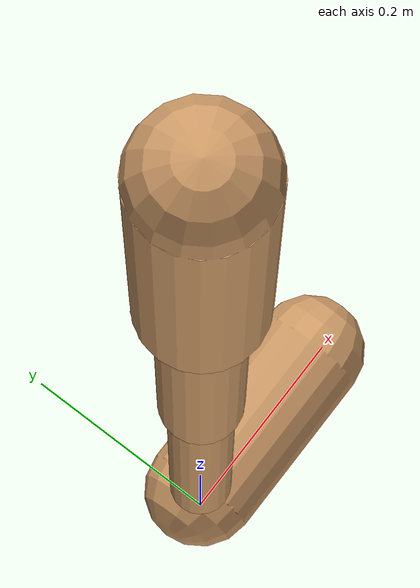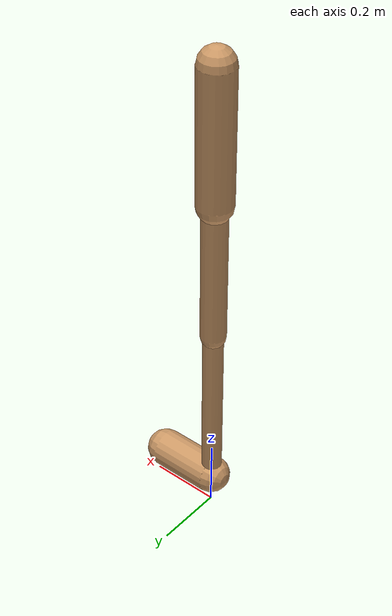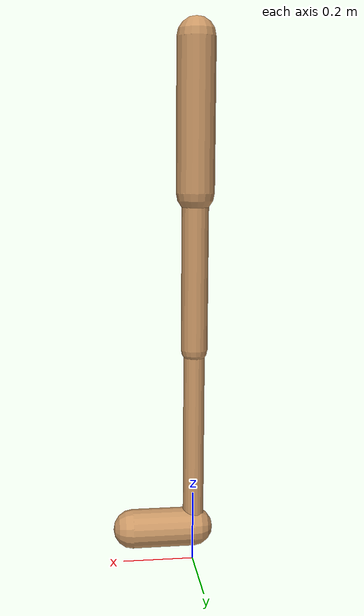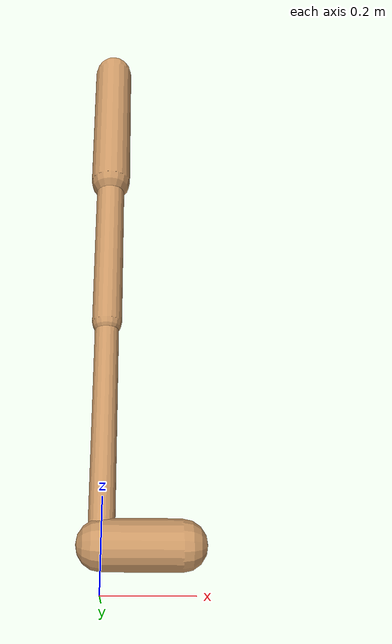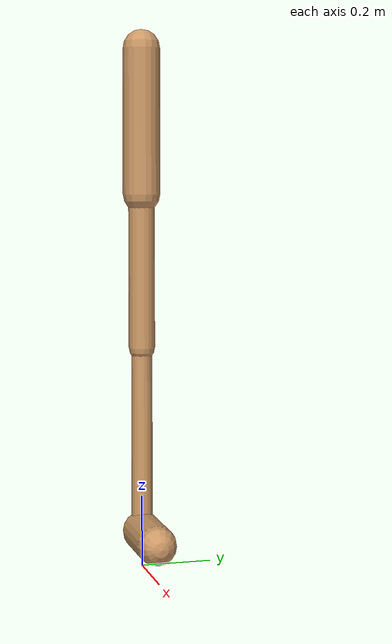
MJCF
<mujoco model="walker2d">
  <compiler angle="degree" coordinate="global" inertiafromgeom="true" />
  <default>
    <joint armature="0.01" damping=".1" limited="true" />
    <geom conaffinity="0" condim="3" contype="1" density="1000" friction="0.8 .1 .1" rgba="0.8 0.6 .4 1" />
  </default>
  <option integrator="RK4" timestep="0.002" />
  <worldbody>

    <body name="torso" pos="0 0 -0.046782286264057754">
      <joint armature="0" axis="1 0 0" damping="0" limited="false" name="ignorex" pos="0 0 0" stiffness="0" type="slide" />
      <joint armature="0" axis="0 0 1" damping="0" limited="false" name="ignorez" pos="0 0 0" ref="1.25" stiffness="0" type="slide" />
      <joint armature="0" axis="0 1 0" damping="0" limited="false" name="ignorey" pos="0 0 0" stiffness="0" type="hinge" />
      <geom fromto="0 0 1.45 0 0 1.05" name="torso_geom" size="0.05202447358836457" type="capsule" />
      <body name="thigh">
        <joint axis="0 -1 0" name="thigh_joint" pos="0 0 1.05" range="-150 0" type="hinge" />
        <geom fromto="0.0 0.0 1.05 0.0 0.0 0.6221600303356063" name="thigh_geom" size="0.03672349629898163" type="capsule" />
        <body name="leg" pos="0.0 0.0 0.022160030335606318">
          <joint axis="0 -1 0" name="leg_joint" pos="0 0 0.6" range="-150 0" type="hinge" />
          <geom fromto="0.0 0.0 0.6 0.0 0.0 0.12462225592845146" name="leg_geom" size="0.029378797039185306" type="capsule" />
          <body name="foot" pos="0.0 0.0 0.02462225592845145">
            <joint axis="0 -1 0" name="foot_joint" pos="0 0 0.1" range="-45 45" type="hinge" />
            <geom fromto="0.0 0.0 0.1 0.1733792004337473 0.0 0.1" name="foot_geom" size="0.05466420068895551" type="capsule" />
          </body>
        </body>
      </body>

      <body name="thigh_left">
        <joint axis="0 -1 0" name="thigh_left_joint" pos="0 0 1.05" range="-150 0" type="hinge" />
        <geom fromto="0.0 0.0 1.05 0.0 0.0 0.6221600303356063" name="thigh_left_geom" rgba=".7 .3 .6 1" size="0.03672349629898163" type="capsule" />
        <body name="leg_left" pos="0.0 0.0 0.022160030335606318">
          <joint axis="0 -1 0" name="leg_left_joint" pos="0 0 0.6" range="-150 0" type="hinge" />
          <geom fromto="0.0 0.0 0.6 0.0 0.0 0.12462225592845146" name="leg_left_geom" rgba=".7 .3 .6 1" size="0.029378797039185306" type="capsule" />
          <body name="foot_left" pos="0.0 0.0 0.02462225592845145">
            <joint axis="0 -1 0" name="foot_left_joint" pos="0 0 0.1" range="-45 45" type="hinge" />
            <geom fromto="0.0 0.0 0.1 0.1733792004337473 0.0 0.1" name="foot_left_geom" rgba=".7 .3 .6 1" size="0.05466420068895551" type="capsule" />
          </body>
        </body>
      </body>
    </body>
  </worldbody>
  <actuator>

    <motor ctrllimited="true" ctrlrange="-1.0 1.0" gear="100" joint="thigh_joint" />
    <motor ctrllimited="true" ctrlrange="-1.0 1.0" gear="100" joint="leg_joint" />
    <motor ctrllimited="true" ctrlrange="-1.0 1.0" gear="100" joint="foot_joint" />
    <motor ctrllimited="true" ctrlrange="-1.0 1.0" gear="100" joint="thigh_left_joint" />
    <motor ctrllimited="true" ctrlrange="-1.0 1.0" gear="100" joint="leg_left_joint" />
    <motor ctrllimited="true" ctrlrange="-1.0 1.0" gear="100" joint="foot_left_joint" />

  </actuator>
</mujoco>
